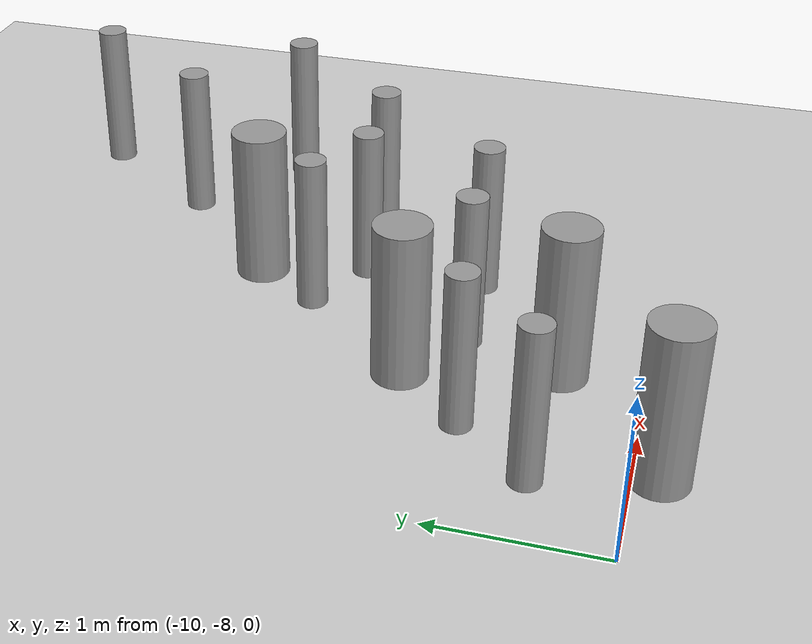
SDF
<sdf version="1.6">
 <world name="default">
  <model name="ground_plane">
   <static>1</static>
   <link name="link">
    <collision name="collision">
     <geometry><plane><normal>0 0 1</normal><size>100 100</size></plane></geometry>
     <surface><friction><ode><mu>100</mu><mu2>50</mu2></ode></friction></surface>
    </collision>
    <visual name="visual">
     <cast_shadows>0</cast_shadows>
     <geometry><plane><normal>0 0 1</normal><size>100 100</size></plane></geometry>
     <material>
      <script><uri>file://media/materials/scripts/gazebo.material</uri><name>Gazebo/Grey</name></script>
     </material>
    </visual>
   </link>
  </model>
  <model name="cyl_wall_clone_clone_1_clone_1_clone_clone_0_clone_1_clone_1_clone_1_clone">
   <link name="link_0">
    <pose>-2.73893 -0.366465 0 0 -0 0</pose>
    <inertial>
     <mass>0.0374993</mass>
     <inertia>
      <ixx>0.00321281</ixx>
      <ixy>0</ixy>
      <ixz>0</ixz>
      <iyy>0.00321281</iyy>
      <iyz>0</iyz>
      <izz>0.000175774</izz>
     </inertia>
    </inertial>
    <visual name="visual">
     <geometry><cylinder><radius>0.0968661</radius><length>1</length></cylinder></geometry>
     <material>
      <lighting>1</lighting>
      <script><uri>file://media/materials/scripts/gazebo.material</uri><name>Gazebo/Grey</name></script>
      <ambient>0.3 0.3 0.3 1</ambient>
      <diffuse>0.7 0.7 0.7 1</diffuse>
      <specular>0.01 0.01 0.01 1</specular>
      <emissive>0 0 0 1</emissive>
     </material>
    </visual>
    <collision name="collision">
     <geometry><cylinder><radius>0.096866</radius><length>1</length></cylinder></geometry>
     <surface>
      <friction>
       <ode><mu>1</mu><mu2>1</mu2><fdir1>0 0 0</fdir1><slip1>0</slip1><slip2>0</slip2></ode>
       <torsional>
        <coefficient>1</coefficient>
        <patch_radius>0</patch_radius>
        <surface_radius>0</surface_radius>
        <use_patch_radius>1</use_patch_radius>
        <ode><slip>0</slip></ode>
       </torsional>
      </friction>
      <bounce><restitution_coefficient>0</restitution_coefficient><threshold>1e+06</threshold></bounce>
      <contact>
       <collide_without_contact>0</collide_without_contact>
       <collide_without_contact_bitmask>1</collide_without_contact_bitmask>
       <collide_bitmask>1</collide_bitmask>
       <ode>
        <soft_cfm>0</soft_cfm>
        <soft_erp>0.2</soft_erp>
        <kp>1e+13</kp>
        <kd>1</kd>
        <max_vel>0.01</max_vel>
        <min_depth>0</min_depth>
       </ode>
       <bullet>
        <split_impulse>1</split_impulse>
        <split_impulse_penetration_threshold>-0.01</split_impulse_penetration_threshold>
        <soft_cfm>0</soft_cfm>
        <soft_erp>0.2</soft_erp>
        <kp>1e+13</kp>
        <kd>1</kd>
       </bullet>
      </contact>
     </surface>
    </collision>
   </link>
   <link name="link_0_clone">
    <pose>-1.73893 0.61877 0 0 -0 0</pose>
    <inertial>
     <mass>0.0374993</mass>
     <inertia>
      <ixx>0.00321281</ixx>
      <ixy>0</ixy>
      <ixz>0</ixz>
      <iyy>0.00321281</iyy>
      <iyz>0</iyz>
      <izz>0.000175774</izz>
     </inertia>
    </inertial>
    <visual name="visual">
     <geometry><cylinder><radius>0.0968661</radius><length>1</length></cylinder></geometry>
     <material>
      <lighting>1</lighting>
      <script><uri>file://media/materials/scripts/gazebo.material</uri><name>Gazebo/Grey</name></script>
      <ambient>0.3 0.3 0.3 1</ambient>
      <diffuse>0.7 0.7 0.7 1</diffuse>
      <specular>0.01 0.01 0.01 1</specular>
      <emissive>0 0 0 1</emissive>
      <shader type="pixel"/>
     </material>
    </visual>
    <collision name="collision">
     <geometry><cylinder><radius>0.096866</radius><length>1</length></cylinder></geometry>
     <surface>
      <friction>
       <ode><mu>1</mu><mu2>1</mu2><fdir1>0 0 0</fdir1><slip1>0</slip1><slip2>0</slip2></ode>
       <torsional>
        <coefficient>1</coefficient>
        <patch_radius>0</patch_radius>
        <surface_radius>0</surface_radius>
        <use_patch_radius>1</use_patch_radius>
        <ode><slip>0</slip></ode>
       </torsional>
      </friction>
      <bounce><restitution_coefficient>0</restitution_coefficient><threshold>1e+06</threshold></bounce>
      <contact>
       <collide_without_contact>0</collide_without_contact>
       <collide_without_contact_bitmask>1</collide_without_contact_bitmask>
       <collide_bitmask>1</collide_bitmask>
       <ode>
        <soft_cfm>0</soft_cfm>
        <soft_erp>0.2</soft_erp>
        <kp>1e+13</kp>
        <kd>1</kd>
        <max_vel>0.01</max_vel>
        <min_depth>0</min_depth>
       </ode>
       <bullet>
        <split_impulse>1</split_impulse>
        <split_impulse_penetration_threshold>-0.01</split_impulse_penetration_threshold>
        <soft_cfm>0</soft_cfm>
        <soft_erp>0.2</soft_erp>
        <kp>1e+13</kp>
        <kd>1</kd>
       </bullet>
      </contact>
     </surface>
    </collision>
   </link>
   <link name="link_0_clone_clone">
    <pose>-0.327073 0.143919 0 0 -0 0</pose>
    <inertial>
     <mass>0.0374993</mass>
     <inertia>
      <ixx>0.00321281</ixx>
      <ixy>0</ixy>
      <ixz>0</ixz>
      <iyy>0.00321281</iyy>
      <iyz>0</iyz>
      <izz>0.000175774</izz>
     </inertia>
    </inertial>
    <visual name="visual">
     <geometry><cylinder><radius>0.0968661</radius><length>1</length></cylinder></geometry>
     <material>
      <lighting>1</lighting>
      <script><uri>file://media/materials/scripts/gazebo.material</uri><name>Gazebo/Grey</name></script>
      <ambient>0.3 0.3 0.3 1</ambient>
      <diffuse>0.7 0.7 0.7 1</diffuse>
      <specular>0.01 0.01 0.01 1</specular>
      <emissive>0 0 0 1</emissive>
      <shader type="pixel"/>
     </material>
    </visual>
    <collision name="collision">
     <geometry><cylinder><radius>0.096866</radius><length>1</length></cylinder></geometry>
     <surface>
      <friction>
       <ode><mu>1</mu><mu2>1</mu2><fdir1>0 0 0</fdir1><slip1>0</slip1><slip2>0</slip2></ode>
       <torsional>
        <coefficient>1</coefficient>
        <patch_radius>0</patch_radius>
        <surface_radius>0</surface_radius>
        <use_patch_radius>1</use_patch_radius>
        <ode><slip>0</slip></ode>
       </torsional>
      </friction>
      <bounce><restitution_coefficient>0</restitution_coefficient><threshold>1e+06</threshold></bounce>
      <contact>
       <collide_without_contact>0</collide_without_contact>
       <collide_without_contact_bitmask>1</collide_without_contact_bitmask>
       <collide_bitmask>1</collide_bitmask>
       <ode>
        <soft_cfm>0</soft_cfm>
        <soft_erp>0.2</soft_erp>
        <kp>1e+13</kp>
        <kd>1</kd>
        <max_vel>0.01</max_vel>
        <min_depth>0</min_depth>
       </ode>
       <bullet>
        <split_impulse>1</split_impulse>
        <split_impulse_penetration_threshold>-0.01</split_impulse_penetration_threshold>
        <soft_cfm>0</soft_cfm>
        <soft_erp>0.2</soft_erp>
        <kp>1e+13</kp>
        <kd>1</kd>
       </bullet>
      </contact>
     </surface>
    </collision>
   </link>
   <link name="link_0_clone_clone_0">
    <pose>1.26107 -0.419359 0 0 -0 0</pose>
    <inertial>
     <mass>0.0374993</mass>
     <inertia>
      <ixx>0.00321281</ixx>
      <ixy>0</ixy>
      <ixz>0</ixz>
      <iyy>0.00321281</iyy>
      <iyz>0</iyz>
      <izz>0.000175774</izz>
     </inertia>
    </inertial>
    <visual name="visual">
     <geometry><cylinder><radius>0.0968661</radius><length>1</length></cylinder></geometry>
     <material>
      <lighting>1</lighting>
      <script><uri>file://media/materials/scripts/gazebo.material</uri><name>Gazebo/Grey</name></script>
      <ambient>0.3 0.3 0.3 1</ambient>
      <diffuse>0.7 0.7 0.7 1</diffuse>
      <specular>0.01 0.01 0.01 1</specular>
      <emissive>0 0 0 1</emissive>
      <shader type="pixel"/>
     </material>
    </visual>
    <collision name="collision">
     <geometry><cylinder><radius>0.096866</radius><length>1</length></cylinder></geometry>
     <surface>
      <friction>
       <ode><mu>1</mu><mu2>1</mu2><fdir1>0 0 0</fdir1><slip1>0</slip1><slip2>0</slip2></ode>
       <torsional>
        <coefficient>1</coefficient>
        <patch_radius>0</patch_radius>
        <surface_radius>0</surface_radius>
        <use_patch_radius>1</use_patch_radius>
        <ode><slip>0</slip></ode>
       </torsional>
      </friction>
      <bounce><restitution_coefficient>0</restitution_coefficient><threshold>1e+06</threshold></bounce>
      <contact>
       <collide_without_contact>0</collide_without_contact>
       <collide_without_contact_bitmask>1</collide_without_contact_bitmask>
       <collide_bitmask>1</collide_bitmask>
       <ode>
        <soft_cfm>0</soft_cfm>
        <soft_erp>0.2</soft_erp>
        <kp>1e+13</kp>
        <kd>1</kd>
        <max_vel>0.01</max_vel>
        <min_depth>0</min_depth>
       </ode>
       <bullet>
        <split_impulse>1</split_impulse>
        <split_impulse_penetration_threshold>-0.01</split_impulse_penetration_threshold>
        <soft_cfm>0</soft_cfm>
        <soft_erp>0.2</soft_erp>
        <kp>1e+13</kp>
        <kd>1</kd>
       </bullet>
      </contact>
     </surface>
    </collision>
   </link>
   <link name="link_0_clone_clone_1">
    <pose>-1.73893 -0.277168 0 0 -0 0</pose>
    <inertial>
     <mass>0.0374993</mass>
     <inertia>
      <ixx>0.00321281</ixx>
      <ixy>0</ixy>
      <ixz>0</ixz>
      <iyy>0.00321281</iyy>
      <iyz>0</iyz>
      <izz>0.000175774</izz>
     </inertia>
    </inertial>
    <visual name="visual">
     <geometry><cylinder><radius>0.0968661</radius><length>1</length></cylinder></geometry>
     <material>
      <lighting>1</lighting>
      <script><uri>file://media/materials/scripts/gazebo.material</uri><name>Gazebo/Grey</name></script>
      <ambient>0.3 0.3 0.3 1</ambient>
      <diffuse>0.7 0.7 0.7 1</diffuse>
      <specular>0.01 0.01 0.01 1</specular>
      <emissive>0 0 0 1</emissive>
      <shader type="pixel"/>
     </material>
    </visual>
    <collision name="collision">
     <geometry><cylinder><radius>0.096866</radius><length>1</length></cylinder></geometry>
     <surface>
      <friction>
       <ode><mu>1</mu><mu2>1</mu2><fdir1>0 0 0</fdir1><slip1>0</slip1><slip2>0</slip2></ode>
       <torsional>
        <coefficient>1</coefficient>
        <patch_radius>0</patch_radius>
        <surface_radius>0</surface_radius>
        <use_patch_radius>1</use_patch_radius>
        <ode><slip>0</slip></ode>
       </torsional>
      </friction>
      <bounce><restitution_coefficient>0</restitution_coefficient><threshold>1e+06</threshold></bounce>
      <contact>
       <collide_without_contact>0</collide_without_contact>
       <collide_without_contact_bitmask>1</collide_without_contact_bitmask>
       <collide_bitmask>1</collide_bitmask>
       <ode>
        <soft_cfm>0</soft_cfm>
        <soft_erp>0.2</soft_erp>
        <kp>1e+13</kp>
        <kd>1</kd>
        <max_vel>0.01</max_vel>
        <min_depth>0</min_depth>
       </ode>
       <bullet>
        <split_impulse>1</split_impulse>
        <split_impulse_penetration_threshold>-0.01</split_impulse_penetration_threshold>
        <soft_cfm>0</soft_cfm>
        <soft_erp>0.2</soft_erp>
        <kp>1e+13</kp>
        <kd>1</kd>
       </bullet>
      </contact>
     </surface>
    </collision>
   </link>
   <link name="link_0_clone_clone_2">
    <pose>-0.738934 0.593961 0 0 -0 0</pose>
    <inertial>
     <mass>0.0374993</mass>
     <inertia>
      <ixx>0.00321281</ixx>
      <ixy>0</ixy>
      <ixz>0</ixz>
      <iyy>0.00321281</iyy>
      <iyz>0</iyz>
      <izz>0.000175774</izz>
     </inertia>
    </inertial>
    <visual name="visual">
     <geometry><cylinder><radius>0.0968661</radius><length>1</length></cylinder></geometry>
     <material>
      <lighting>1</lighting>
      <script><uri>file://media/materials/scripts/gazebo.material</uri><name>Gazebo/Grey</name></script>
      <ambient>0.3 0.3 0.3 1</ambient>
      <diffuse>0.7 0.7 0.7 1</diffuse>
      <specular>0.01 0.01 0.01 1</specular>
      <emissive>0 0 0 1</emissive>
      <shader type="pixel"/>
     </material>
    </visual>
    <collision name="collision">
     <geometry><cylinder><radius>0.096866</radius><length>1</length></cylinder></geometry>
     <surface>
      <friction>
       <ode><mu>1</mu><mu2>1</mu2><fdir1>0 0 0</fdir1><slip1>0</slip1><slip2>0</slip2></ode>
       <torsional>
        <coefficient>1</coefficient>
        <patch_radius>0</patch_radius>
        <surface_radius>0</surface_radius>
        <use_patch_radius>1</use_patch_radius>
        <ode><slip>0</slip></ode>
       </torsional>
      </friction>
      <bounce><restitution_coefficient>0</restitution_coefficient><threshold>1e+06</threshold></bounce>
      <contact>
       <collide_without_contact>0</collide_without_contact>
       <collide_without_contact_bitmask>1</collide_without_contact_bitmask>
       <collide_bitmask>1</collide_bitmask>
       <ode>
        <soft_cfm>0</soft_cfm>
        <soft_erp>0.2</soft_erp>
        <kp>1e+13</kp>
        <kd>1</kd>
        <max_vel>0.01</max_vel>
        <min_depth>0</min_depth>
       </ode>
       <bullet>
        <split_impulse>1</split_impulse>
        <split_impulse_penetration_threshold>-0.01</split_impulse_penetration_threshold>
        <soft_cfm>0</soft_cfm>
        <soft_erp>0.2</soft_erp>
        <kp>1e+13</kp>
        <kd>1</kd>
       </bullet>
      </contact>
     </surface>
    </collision>
   </link>
   <link name="link_0_clone_clone_3">
    <pose>0.261066 0.624849 0 0 -0 0</pose>
    <inertial>
     <mass>0.0374993</mass>
     <inertia>
      <ixx>0.00321281</ixx>
      <ixy>0</ixy>
      <ixz>0</ixz>
      <iyy>0.00321281</iyy>
      <iyz>0</iyz>
      <izz>0.000175774</izz>
     </inertia>
    </inertial>
    <visual name="visual">
     <geometry><cylinder><radius>0.0968661</radius><length>1</length></cylinder></geometry>
     <material>
      <lighting>1</lighting>
      <script><uri>file://media/materials/scripts/gazebo.material</uri><name>Gazebo/Grey</name></script>
      <ambient>0.3 0.3 0.3 1</ambient>
      <diffuse>0.7 0.7 0.7 1</diffuse>
      <specular>0.01 0.01 0.01 1</specular>
      <emissive>0 0 0 1</emissive>
      <shader type="pixel"/>
     </material>
    </visual>
    <collision name="collision">
     <geometry><cylinder><radius>0.096866</radius><length>1</length></cylinder></geometry>
     <surface>
      <friction>
       <ode><mu>1</mu><mu2>1</mu2><fdir1>0 0 0</fdir1><slip1>0</slip1><slip2>0</slip2></ode>
       <torsional>
        <coefficient>1</coefficient>
        <patch_radius>0</patch_radius>
        <surface_radius>0</surface_radius>
        <use_patch_radius>1</use_patch_radius>
        <ode><slip>0</slip></ode>
       </torsional>
      </friction>
      <bounce><restitution_coefficient>0</restitution_coefficient><threshold>1e+06</threshold></bounce>
      <contact>
       <collide_without_contact>0</collide_without_contact>
       <collide_without_contact_bitmask>1</collide_without_contact_bitmask>
       <collide_bitmask>1</collide_bitmask>
       <ode>
        <soft_cfm>0</soft_cfm>
        <soft_erp>0.2</soft_erp>
        <kp>1e+13</kp>
        <kd>1</kd>
        <max_vel>0.01</max_vel>
        <min_depth>0</min_depth>
       </ode>
       <bullet>
        <split_impulse>1</split_impulse>
        <split_impulse_penetration_threshold>-0.01</split_impulse_penetration_threshold>
        <soft_cfm>0</soft_cfm>
        <soft_erp>0.2</soft_erp>
        <kp>1e+13</kp>
        <kd>1</kd>
       </bullet>
      </contact>
     </surface>
    </collision>
   </link>
   <link name="link_0_clone_clone_4">
    <pose>-0.239049 -0.353105 0 0 -0 0</pose>
    <inertial>
     <mass>0.0374993</mass>
     <inertia>
      <ixx>0.00321281</ixx>
      <ixy>0</ixy>
      <ixz>0</ixz>
      <iyy>0.00321281</iyy>
      <iyz>0</iyz>
      <izz>0.000175774</izz>
     </inertia>
    </inertial>
    <visual name="visual">
     <geometry><cylinder><radius>0.0968661</radius><length>1</length></cylinder></geometry>
     <material>
      <lighting>1</lighting>
      <script><uri>file://media/materials/scripts/gazebo.material</uri><name>Gazebo/Grey</name></script>
      <ambient>0.3 0.3 0.3 1</ambient>
      <diffuse>0.7 0.7 0.7 1</diffuse>
      <specular>0.01 0.01 0.01 1</specular>
      <emissive>0 0 0 1</emissive>
      <shader type="pixel"/>
     </material>
    </visual>
    <collision name="collision">
     <geometry><cylinder><radius>0.096866</radius><length>1</length></cylinder></geometry>
     <surface>
      <friction>
       <ode><mu>1</mu><mu2>1</mu2><fdir1>0 0 0</fdir1><slip1>0</slip1><slip2>0</slip2></ode>
       <torsional>
        <coefficient>1</coefficient>
        <patch_radius>0</patch_radius>
        <surface_radius>0</surface_radius>
        <use_patch_radius>1</use_patch_radius>
        <ode><slip>0</slip></ode>
       </torsional>
      </friction>
      <bounce><restitution_coefficient>0</restitution_coefficient><threshold>1e+06</threshold></bounce>
      <contact>
       <collide_without_contact>0</collide_without_contact>
       <collide_without_contact_bitmask>1</collide_without_contact_bitmask>
       <collide_bitmask>1</collide_bitmask>
       <ode>
        <soft_cfm>0</soft_cfm>
        <soft_erp>0.2</soft_erp>
        <kp>1e+13</kp>
        <kd>1</kd>
        <max_vel>0.01</max_vel>
        <min_depth>0</min_depth>
       </ode>
       <bullet>
        <split_impulse>1</split_impulse>
        <split_impulse_penetration_threshold>-0.01</split_impulse_penetration_threshold>
        <soft_cfm>0</soft_cfm>
        <soft_erp>0.2</soft_erp>
        <kp>1e+13</kp>
        <kd>1</kd>
       </bullet>
      </contact>
     </surface>
    </collision>
   </link>
   <link name="link_0_clone_clone_5">
    <pose>0.672792 0.143919 0 0 -0 0</pose>
    <inertial>
     <mass>0.0374993</mass>
     <inertia>
      <ixx>0.00321281</ixx>
      <ixy>0</ixy>
      <ixz>0</ixz>
      <iyy>0.00321281</iyy>
      <iyz>0</iyz>
      <izz>0.000175774</izz>
     </inertia>
    </inertial>
    <visual name="visual">
     <geometry><cylinder><radius>0.0968661</radius><length>1</length></cylinder></geometry>
     <material>
      <lighting>1</lighting>
      <script><uri>file://media/materials/scripts/gazebo.material</uri><name>Gazebo/Grey</name></script>
      <ambient>0.3 0.3 0.3 1</ambient>
      <diffuse>0.7 0.7 0.7 1</diffuse>
      <specular>0.01 0.01 0.01 1</specular>
      <emissive>0 0 0 1</emissive>
      <shader type="pixel"/>
     </material>
    </visual>
    <collision name="collision">
     <geometry><cylinder><radius>0.096866</radius><length>1</length></cylinder></geometry>
     <surface>
      <friction>
       <ode><mu>1</mu><mu2>1</mu2><fdir1>0 0 0</fdir1><slip1>0</slip1><slip2>0</slip2></ode>
       <torsional>
        <coefficient>1</coefficient>
        <patch_radius>0</patch_radius>
        <surface_radius>0</surface_radius>
        <use_patch_radius>1</use_patch_radius>
        <ode><slip>0</slip></ode>
       </torsional>
      </friction>
      <bounce><restitution_coefficient>0</restitution_coefficient><threshold>1e+06</threshold></bounce>
      <contact>
       <collide_without_contact>0</collide_without_contact>
       <collide_without_contact_bitmask>1</collide_without_contact_bitmask>
       <collide_bitmask>1</collide_bitmask>
       <ode>
        <soft_cfm>0</soft_cfm>
        <soft_erp>0.2</soft_erp>
        <kp>1e+13</kp>
        <kd>1</kd>
        <max_vel>0.01</max_vel>
        <min_depth>0</min_depth>
       </ode>
       <bullet>
        <split_impulse>1</split_impulse>
        <split_impulse_penetration_threshold>-0.01</split_impulse_penetration_threshold>
        <soft_cfm>0</soft_cfm>
        <soft_erp>0.2</soft_erp>
        <kp>1e+13</kp>
        <kd>1</kd>
       </bullet>
      </contact>
     </surface>
    </collision>
   </link>
   <link name="link_0_clone_clone_6">
    <pose>1.84596 -0.433423 0 0 -0 0</pose>
    <inertial>
     <mass>0.0374993</mass>
     <inertia>
      <ixx>0.00321281</ixx>
      <ixy>0</ixy>
      <ixz>0</ixz>
      <iyy>0.00321281</iyy>
      <iyz>0</iyz>
      <izz>0.000175774</izz>
     </inertia>
    </inertial>
    <visual name="visual">
     <geometry><cylinder><radius>0.0968661</radius><length>1</length></cylinder></geometry>
     <material>
      <lighting>1</lighting>
      <script><uri>file://media/materials/scripts/gazebo.material</uri><name>Gazebo/Grey</name></script>
      <ambient>0.3 0.3 0.3 1</ambient>
      <diffuse>0.7 0.7 0.7 1</diffuse>
      <specular>0.01 0.01 0.01 1</specular>
      <emissive>0 0 0 1</emissive>
      <shader type="pixel"/>
     </material>
    </visual>
    <collision name="collision">
     <geometry><cylinder><radius>0.096866</radius><length>1</length></cylinder></geometry>
     <surface>
      <friction>
       <ode><mu>1</mu><mu2>1</mu2><fdir1>0 0 0</fdir1><slip1>0</slip1><slip2>0</slip2></ode>
       <torsional>
        <coefficient>1</coefficient>
        <patch_radius>0</patch_radius>
        <surface_radius>0</surface_radius>
        <use_patch_radius>1</use_patch_radius>
        <ode><slip>0</slip></ode>
       </torsional>
      </friction>
      <bounce><restitution_coefficient>0</restitution_coefficient><threshold>1e+06</threshold></bounce>
      <contact>
       <collide_without_contact>0</collide_without_contact>
       <collide_without_contact_bitmask>1</collide_without_contact_bitmask>
       <collide_bitmask>1</collide_bitmask>
       <ode>
        <soft_cfm>0</soft_cfm>
        <soft_erp>0.2</soft_erp>
        <kp>1e+13</kp>
        <kd>1</kd>
        <max_vel>0.01</max_vel>
        <min_depth>0</min_depth>
       </ode>
       <bullet>
        <split_impulse>1</split_impulse>
        <split_impulse_penetration_threshold>-0.01</split_impulse_penetration_threshold>
        <soft_cfm>0</soft_cfm>
        <soft_erp>0.2</soft_erp>
        <kp>1e+13</kp>
        <kd>1</kd>
       </bullet>
      </contact>
     </surface>
    </collision>
   </link>
   <link name="link_1">
    <pose>-0.738934 -0.397931 0 0 -0 0</pose>
    <inertial>
     <mass>0.117398</mass>
     <inertia>
      <ixx>0.0106445</ixx>
      <ixy>0</ixy>
      <ixz>0</ixz>
      <iyy>0.0106445</iyy>
      <iyz>0</iyz>
      <izz>0.00172278</izz>
     </inertia>
    </inertial>
    <visual name="visual">
     <geometry><cylinder><radius>0.171317</radius><length>1</length></cylinder></geometry>
     <material>
      <lighting>1</lighting>
      <script><uri>file://media/materials/scripts/gazebo.material</uri><name>Gazebo/Grey</name></script>
      <ambient>0.3 0.3 0.3 1</ambient>
      <diffuse>0.7 0.7 0.7 1</diffuse>
      <specular>0.01 0.01 0.01 1</specular>
      <emissive>0 0 0 1</emissive>
     </material>
    </visual>
    <collision name="collision">
     <geometry><cylinder><radius>0.171317</radius><length>1</length></cylinder></geometry>
     <surface>
      <friction>
       <ode><mu>1</mu><mu2>1</mu2><fdir1>0 0 0</fdir1><slip1>0</slip1><slip2>0</slip2></ode>
       <torsional>
        <coefficient>1</coefficient>
        <patch_radius>0</patch_radius>
        <surface_radius>0</surface_radius>
        <use_patch_radius>1</use_patch_radius>
        <ode><slip>0</slip></ode>
       </torsional>
      </friction>
      <bounce><restitution_coefficient>0</restitution_coefficient><threshold>1e+06</threshold></bounce>
      <contact>
       <collide_without_contact>0</collide_without_contact>
       <collide_without_contact_bitmask>1</collide_without_contact_bitmask>
       <collide_bitmask>1</collide_bitmask>
       <ode>
        <soft_cfm>0</soft_cfm>
        <soft_erp>0.2</soft_erp>
        <kp>1e+13</kp>
        <kd>1</kd>
        <max_vel>0.01</max_vel>
        <min_depth>0</min_depth>
       </ode>
       <bullet>
        <split_impulse>1</split_impulse>
        <split_impulse_penetration_threshold>-0.01</split_impulse_penetration_threshold>
        <soft_cfm>0</soft_cfm>
        <soft_erp>0.2</soft_erp>
        <kp>1e+13</kp>
        <kd>1</kd>
       </bullet>
      </contact>
     </surface>
    </collision>
   </link>
   <link name="link_1_clone">
    <pose>0.697784 -0.380861 0 0 -0 0</pose>
    <inertial>
     <mass>0.117398</mass>
     <inertia>
      <ixx>0.0106445</ixx>
      <ixy>0</ixy>
      <ixz>0</ixz>
      <iyy>0.0106445</iyy>
      <iyz>0</iyz>
      <izz>0.00172278</izz>
     </inertia>
    </inertial>
    <visual name="visual">
     <geometry><cylinder><radius>0.171317</radius><length>1</length></cylinder></geometry>
     <material>
      <lighting>1</lighting>
      <script><uri>file://media/materials/scripts/gazebo.material</uri><name>Gazebo/Grey</name></script>
      <ambient>0.3 0.3 0.3 1</ambient>
      <diffuse>0.7 0.7 0.7 1</diffuse>
      <specular>0.01 0.01 0.01 1</specular>
      <emissive>0 0 0 1</emissive>
      <shader type="pixel"/>
     </material>
    </visual>
    <collision name="collision">
     <geometry><cylinder><radius>0.171317</radius><length>1</length></cylinder></geometry>
     <surface>
      <friction>
       <ode><mu>1</mu><mu2>1</mu2><fdir1>0 0 0</fdir1><slip1>0</slip1><slip2>0</slip2></ode>
       <torsional>
        <coefficient>1</coefficient>
        <patch_radius>0</patch_radius>
        <surface_radius>0</surface_radius>
        <use_patch_radius>1</use_patch_radius>
        <ode><slip>0</slip></ode>
       </torsional>
      </friction>
      <bounce><restitution_coefficient>0</restitution_coefficient><threshold>1e+06</threshold></bounce>
      <contact>
       <collide_without_contact>0</collide_without_contact>
       <collide_without_contact_bitmask>1</collide_without_contact_bitmask>
       <collide_bitmask>1</collide_bitmask>
       <ode>
        <soft_cfm>0</soft_cfm>
        <soft_erp>0.2</soft_erp>
        <kp>1e+13</kp>
        <kd>1</kd>
        <max_vel>0.01</max_vel>
        <min_depth>0</min_depth>
       </ode>
       <bullet>
        <split_impulse>1</split_impulse>
        <split_impulse_penetration_threshold>-0.01</split_impulse_penetration_threshold>
        <soft_cfm>0</soft_cfm>
        <soft_erp>0.2</soft_erp>
        <kp>1e+13</kp>
        <kd>1</kd>
       </bullet>
      </contact>
     </surface>
    </collision>
   </link>
   <link name="link_1_clone_0">
    <pose>1.26107 0.358974 0 0 -0 0</pose>
    <inertial>
     <mass>0.117398</mass>
     <inertia>
      <ixx>0.0106445</ixx>
      <ixy>0</ixy>
      <ixz>0</ixz>
      <iyy>0.0106445</iyy>
      <iyz>0</iyz>
      <izz>0.00172278</izz>
     </inertia>
    </inertial>
    <visual name="visual">
     <geometry><cylinder><radius>0.171317</radius><length>1</length></cylinder></geometry>
     <material>
      <lighting>1</lighting>
      <script><uri>file://media/materials/scripts/gazebo.material</uri><name>Gazebo/Grey</name></script>
      <ambient>0.3 0.3 0.3 1</ambient>
      <diffuse>0.7 0.7 0.7 1</diffuse>
      <specular>0.01 0.01 0.01 1</specular>
      <emissive>0 0 0 1</emissive>
      <shader type="pixel"/>
     </material>
    </visual>
    <collision name="collision">
     <geometry><cylinder><radius>0.171317</radius><length>1</length></cylinder></geometry>
     <surface>
      <friction>
       <ode><mu>1</mu><mu2>1</mu2><fdir1>0 0 0</fdir1><slip1>0</slip1><slip2>0</slip2></ode>
       <torsional>
        <coefficient>1</coefficient>
        <patch_radius>0</patch_radius>
        <surface_radius>0</surface_radius>
        <use_patch_radius>1</use_patch_radius>
        <ode><slip>0</slip></ode>
       </torsional>
      </friction>
      <bounce><restitution_coefficient>0</restitution_coefficient><threshold>1e+06</threshold></bounce>
      <contact>
       <collide_without_contact>0</collide_without_contact>
       <collide_without_contact_bitmask>1</collide_without_contact_bitmask>
       <collide_bitmask>1</collide_bitmask>
       <ode>
        <soft_cfm>0</soft_cfm>
        <soft_erp>0.2</soft_erp>
        <kp>1e+13</kp>
        <kd>1</kd>
        <max_vel>0.01</max_vel>
        <min_depth>0</min_depth>
       </ode>
       <bullet>
        <split_impulse>1</split_impulse>
        <split_impulse_penetration_threshold>-0.01</split_impulse_penetration_threshold>
        <soft_cfm>0</soft_cfm>
        <soft_erp>0.2</soft_erp>
        <kp>1e+13</kp>
        <kd>1</kd>
       </bullet>
      </contact>
     </surface>
    </collision>
   </link>
   <link name="link_1_clone_1">
    <pose>2.26107 0.143919 0 0 -0 0</pose>
    <inertial>
     <mass>0.117398</mass>
     <inertia>
      <ixx>0.0106445</ixx>
      <ixy>0</ixy>
      <ixz>0</ixz>
      <iyy>0.0106445</iyy>
      <iyz>0</iyz>
      <izz>0.00172278</izz>
     </inertia>
    </inertial>
    <visual name="visual">
     <geometry><cylinder><radius>0.171317</radius><length>1</length></cylinder></geometry>
     <material>
      <lighting>1</lighting>
      <script><uri>file://media/materials/scripts/gazebo.material</uri><name>Gazebo/Grey</name></script>
      <ambient>0.3 0.3 0.3 1</ambient>
      <diffuse>0.7 0.7 0.7 1</diffuse>
      <specular>0.01 0.01 0.01 1</specular>
      <emissive>0 0 0 1</emissive>
      <shader type="pixel"/>
     </material>
    </visual>
    <collision name="collision">
     <geometry><cylinder><radius>0.171317</radius><length>1</length></cylinder></geometry>
     <surface>
      <friction>
       <ode><mu>1</mu><mu2>1</mu2><fdir1>0 0 0</fdir1><slip1>0</slip1><slip2>0</slip2></ode>
       <torsional>
        <coefficient>1</coefficient>
        <patch_radius>0</patch_radius>
        <surface_radius>0</surface_radius>
        <use_patch_radius>1</use_patch_radius>
        <ode><slip>0</slip></ode>
       </torsional>
      </friction>
      <bounce><restitution_coefficient>0</restitution_coefficient><threshold>1e+06</threshold></bounce>
      <contact>
       <collide_without_contact>0</collide_without_contact>
       <collide_without_contact_bitmask>1</collide_without_contact_bitmask>
       <collide_bitmask>1</collide_bitmask>
       <ode>
        <soft_cfm>0</soft_cfm>
        <soft_erp>0.2</soft_erp>
        <kp>1e+13</kp>
        <kd>1</kd>
        <max_vel>0.01</max_vel>
        <min_depth>0</min_depth>
       </ode>
       <bullet>
        <split_impulse>1</split_impulse>
        <split_impulse_penetration_threshold>-0.01</split_impulse_penetration_threshold>
        <soft_cfm>0</soft_cfm>
        <soft_erp>0.2</soft_erp>
        <kp>1e+13</kp>
        <kd>1</kd>
       </bullet>
      </contact>
     </surface>
    </collision>
   </link>
   <static>1</static>
   <pose>-8.03837 -6.28407 0.5 0 0 -2.24061</pose>
  </model>
 </world>
</sdf>
